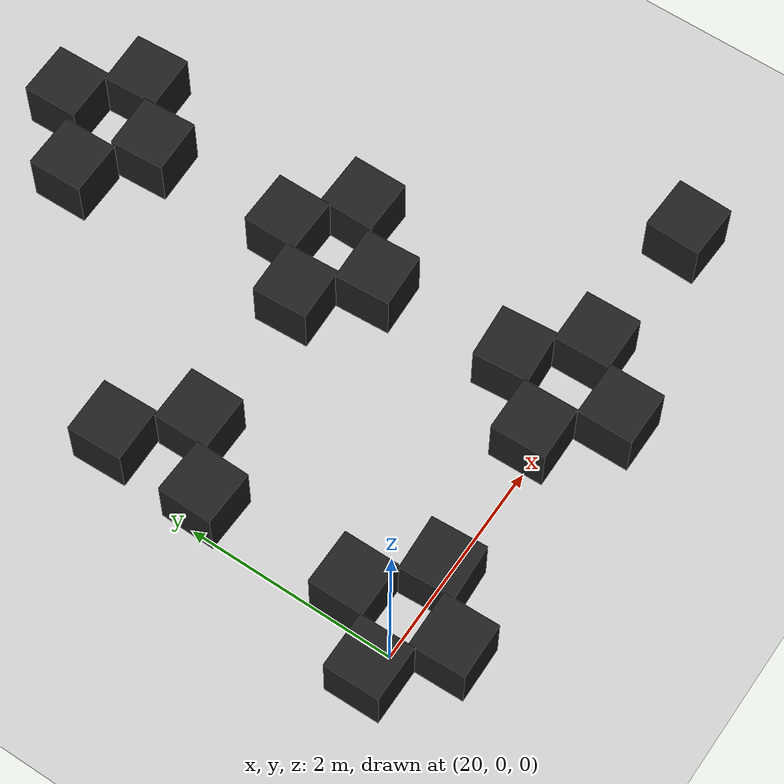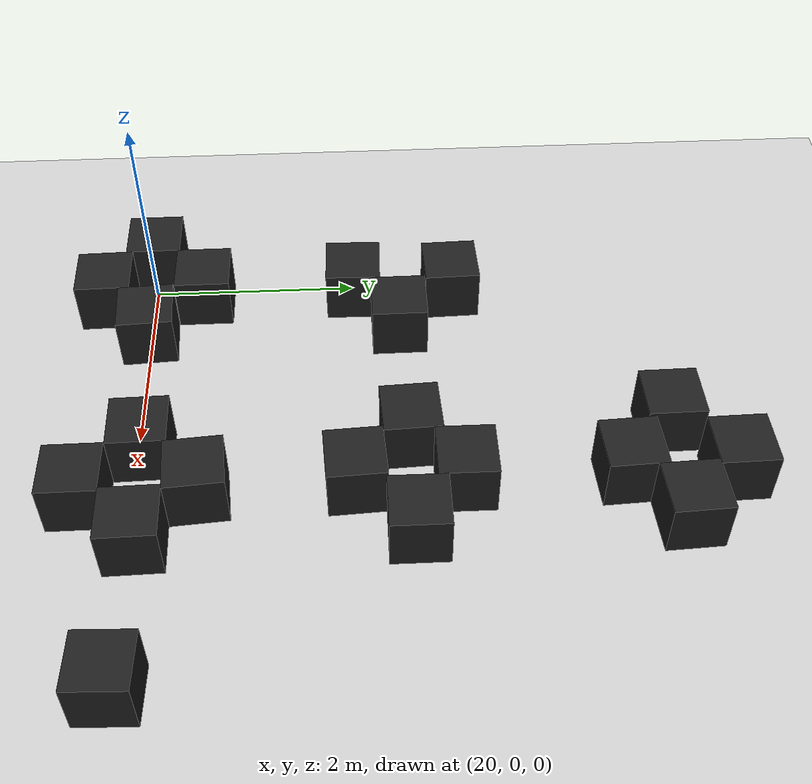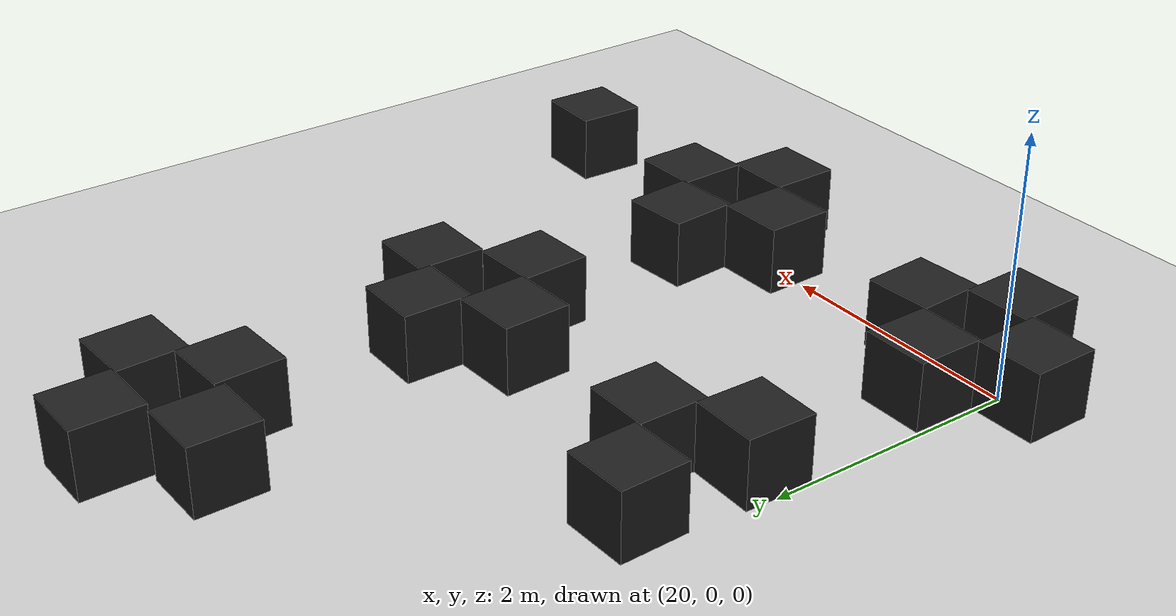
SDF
<sdf version="1.6">
 <world name="default">
  <model name="ground_plane">
   <static>1</static>
   <link name="link">
    <collision name="collision">
     <geometry><plane><normal>0 0 1</normal><size>100 100</size></plane></geometry>
     <surface>
      <contact><collide_bitmask>65535</collide_bitmask></contact>
      <friction><ode><mu>100</mu><mu2>50</mu2></ode></friction>
     </surface>
    </collision>
    <visual name="visual">
     <cast_shadows>0</cast_shadows>
     <geometry><plane><normal>0 0 1</normal><size>100 100</size></plane></geometry>
     <material>
      <script><uri>file://media/materials/scripts/gazebo.material</uri><name>Gazebo/Grey</name></script>
     </material>
    </visual>
   </link>
  </model>
  <model name="unit_box_0_clone_13">
   <link name="link">
    <inertial>
     <mass>1</mass>
     <inertia>
      <ixx>0.166667</ixx>
      <ixy>0</ixy>
      <ixz>0</ixz>
      <iyy>0.166667</iyy>
      <iyz>0</iyz>
      <izz>0.166667</izz>
     </inertia>
    </inertial>
    <visual name="visual">
     <geometry><box><size>0.530101 0.530101 0.530101</size></box></geometry>
     <material>
      <script><name>Gazebo/FlatBlack</name><uri>file://media/materials/scripts/gazebo.material</uri></script>
      <shader type="pixel"><normal_map>__default__</normal_map></shader>
      <ambient>0.1 0.1 0.1 1</ambient>
      <diffuse>0.1 0.1 0.1 1</diffuse>
      <specular>0.01 0.01 0.01 1</specular>
      <emissive>0 0 0 1</emissive>
     </material>
    </visual>
    <collision name="collision">
     <geometry><box><size>0.530101 0.530101 0.530101</size></box></geometry>
     <surface>
      <friction>
       <ode><mu>1</mu><mu2>1</mu2><fdir1>0 0 0</fdir1><slip1>0</slip1><slip2>0</slip2></ode>
       <torsional>
        <coefficient>1</coefficient>
        <patch_radius>0</patch_radius>
        <surface_radius>0</surface_radius>
        <use_patch_radius>1</use_patch_radius>
        <ode><slip>0</slip></ode>
       </torsional>
      </friction>
      <bounce><restitution_coefficient>0</restitution_coefficient><threshold>1e+06</threshold></bounce>
      <contact>
       <collide_without_contact>0</collide_without_contact>
       <collide_without_contact_bitmask>1</collide_without_contact_bitmask>
       <collide_bitmask>1</collide_bitmask>
       <ode>
        <soft_cfm>0</soft_cfm>
        <soft_erp>0.2</soft_erp>
        <kp>1e+13</kp>
        <kd>1</kd>
        <max_vel>0.01</max_vel>
        <min_depth>0</min_depth>
       </ode>
       <bullet>
        <split_impulse>1</split_impulse>
        <split_impulse_penetration_threshold>-0.01</split_impulse_penetration_threshold>
        <soft_cfm>0</soft_cfm>
        <soft_erp>0.2</soft_erp>
        <kp>1e+13</kp>
        <kd>1</kd>
       </bullet>
      </contact>
     </surface>
    </collision>
   </link>
   <static>0</static>
   <pose>22.1517 4.84185 0.314113 0 -0 0.013982</pose>
  </model>
  <model name="unit_box_0_clone_22_clone_14">
   <link name="link">
    <inertial>
     <mass>1</mass>
     <inertia>
      <ixx>0.166667</ixx>
      <ixy>0</ixy>
      <ixz>0</ixz>
      <iyy>0.166667</iyy>
      <iyz>0</iyz>
      <izz>0.166667</izz>
     </inertia>
    </inertial>
    <visual name="visual">
     <geometry><box><size>0.530101 0.530101 0.530101</size></box></geometry>
     <material>
      <script><name>Gazebo/FlatBlack</name><uri>file://media/materials/scripts/gazebo.material</uri></script>
      <shader type="pixel"><normal_map>__default__</normal_map></shader>
      <ambient>0.1 0.1 0.1 1</ambient>
      <diffuse>0.1 0.1 0.1 1</diffuse>
      <specular>0.01 0.01 0.01 1</specular>
      <emissive>0 0 0 1</emissive>
     </material>
    </visual>
    <collision name="collision">
     <geometry><box><size>0.530101 0.530101 0.530101</size></box></geometry>
     <surface>
      <friction>
       <ode><mu>1</mu><mu2>1</mu2><fdir1>0 0 0</fdir1><slip1>0</slip1><slip2>0</slip2></ode>
       <torsional>
        <coefficient>1</coefficient>
        <patch_radius>0</patch_radius>
        <surface_radius>0</surface_radius>
        <use_patch_radius>1</use_patch_radius>
        <ode><slip>0</slip></ode>
       </torsional>
      </friction>
      <bounce><restitution_coefficient>0</restitution_coefficient><threshold>1e+06</threshold></bounce>
      <contact>
       <collide_without_contact>0</collide_without_contact>
       <collide_without_contact_bitmask>1</collide_without_contact_bitmask>
       <collide_bitmask>1</collide_bitmask>
       <ode>
        <soft_cfm>0</soft_cfm>
        <soft_erp>0.2</soft_erp>
        <kp>1e+13</kp>
        <kd>1</kd>
        <max_vel>0.01</max_vel>
        <min_depth>0</min_depth>
       </ode>
       <bullet>
        <split_impulse>1</split_impulse>
        <split_impulse_penetration_threshold>-0.01</split_impulse_penetration_threshold>
        <soft_cfm>0</soft_cfm>
        <soft_erp>0.2</soft_erp>
        <kp>1e+13</kp>
        <kd>1</kd>
       </bullet>
      </contact>
     </surface>
    </collision>
   </link>
   <static>0</static>
   <pose>22.7398 5.34918 0.314111 5e-06 -1.1e-05 0.020813</pose>
  </model>
  <model name="unit_box_0_clone_22_clone_23">
   <link name="link">
    <inertial>
     <mass>1</mass>
     <inertia>
      <ixx>0.166667</ixx>
      <ixy>0</ixy>
      <ixz>0</ixz>
      <iyy>0.166667</iyy>
      <iyz>0</iyz>
      <izz>0.166667</izz>
     </inertia>
    </inertial>
    <visual name="visual">
     <geometry><box><size>0.530101 0.530101 0.530101</size></box></geometry>
     <material>
      <script><name>Gazebo/FlatBlack</name><uri>file://media/materials/scripts/gazebo.material</uri></script>
      <shader type="pixel"><normal_map>__default__</normal_map></shader>
      <ambient>0.1 0.1 0.1 1</ambient>
      <diffuse>0.1 0.1 0.1 1</diffuse>
      <specular>0.01 0.01 0.01 1</specular>
      <emissive>0 0 0 1</emissive>
     </material>
    </visual>
    <collision name="collision">
     <geometry><box><size>0.530101 0.530101 0.530101</size></box></geometry>
     <surface>
      <friction>
       <ode><mu>1</mu><mu2>1</mu2><fdir1>0 0 0</fdir1><slip1>0</slip1><slip2>0</slip2></ode>
       <torsional>
        <coefficient>1</coefficient>
        <patch_radius>0</patch_radius>
        <surface_radius>0</surface_radius>
        <use_patch_radius>1</use_patch_radius>
        <ode><slip>0</slip></ode>
       </torsional>
      </friction>
      <bounce><restitution_coefficient>0</restitution_coefficient><threshold>1e+06</threshold></bounce>
      <contact>
       <collide_without_contact>0</collide_without_contact>
       <collide_without_contact_bitmask>1</collide_without_contact_bitmask>
       <collide_bitmask>1</collide_bitmask>
       <ode>
        <soft_cfm>0</soft_cfm>
        <soft_erp>0.2</soft_erp>
        <kp>1e+13</kp>
        <kd>1</kd>
        <max_vel>0.01</max_vel>
        <min_depth>0</min_depth>
       </ode>
       <bullet>
        <split_impulse>1</split_impulse>
        <split_impulse_penetration_threshold>-0.01</split_impulse_penetration_threshold>
        <soft_cfm>0</soft_cfm>
        <soft_erp>0.2</soft_erp>
        <kp>1e+13</kp>
        <kd>1</kd>
       </bullet>
      </contact>
     </surface>
    </collision>
   </link>
   <static>0</static>
   <pose>22.7259 4.38549 0.314113 0 -0 0.047968</pose>
  </model>
  <model name="unit_box_0_clone_22_clone_24">
   <link name="link">
    <inertial>
     <mass>1</mass>
     <inertia>
      <ixx>0.166667</ixx>
      <ixy>0</ixy>
      <ixz>0</ixz>
      <iyy>0.166667</iyy>
      <iyz>0</iyz>
      <izz>0.166667</izz>
     </inertia>
    </inertial>
    <visual name="visual">
     <geometry><box><size>0.530101 0.530101 0.530101</size></box></geometry>
     <material>
      <script><name>Gazebo/FlatBlack</name><uri>file://media/materials/scripts/gazebo.material</uri></script>
      <shader type="pixel"><normal_map>__default__</normal_map></shader>
      <ambient>0.1 0.1 0.1 1</ambient>
      <diffuse>0.1 0.1 0.1 1</diffuse>
      <specular>0.01 0.01 0.01 1</specular>
      <emissive>0 0 0 1</emissive>
     </material>
    </visual>
    <collision name="collision">
     <geometry><box><size>0.530101 0.530101 0.530101</size></box></geometry>
     <surface>
      <friction>
       <ode><mu>1</mu><mu2>1</mu2><fdir1>0 0 0</fdir1><slip1>0</slip1><slip2>0</slip2></ode>
       <torsional>
        <coefficient>1</coefficient>
        <patch_radius>0</patch_radius>
        <surface_radius>0</surface_radius>
        <use_patch_radius>1</use_patch_radius>
        <ode><slip>0</slip></ode>
       </torsional>
      </friction>
      <bounce><restitution_coefficient>0</restitution_coefficient><threshold>1e+06</threshold></bounce>
      <contact>
       <collide_without_contact>0</collide_without_contact>
       <collide_without_contact_bitmask>1</collide_without_contact_bitmask>
       <collide_bitmask>1</collide_bitmask>
       <ode>
        <soft_cfm>0</soft_cfm>
        <soft_erp>0.2</soft_erp>
        <kp>1e+13</kp>
        <kd>1</kd>
        <max_vel>0.01</max_vel>
        <min_depth>0</min_depth>
       </ode>
       <bullet>
        <split_impulse>1</split_impulse>
        <split_impulse_penetration_threshold>-0.01</split_impulse_penetration_threshold>
        <soft_cfm>0</soft_cfm>
        <soft_erp>0.2</soft_erp>
        <kp>1e+13</kp>
        <kd>1</kd>
       </bullet>
      </contact>
     </surface>
    </collision>
   </link>
   <static>0</static>
   <pose>23.2352 4.8352 0.314113 0 -0 0.048299</pose>
  </model>
  <model name="unit_box_0_clone_10">
   <link name="link">
    <inertial>
     <mass>1</mass>
     <inertia>
      <ixx>0.166667</ixx>
      <ixy>0</ixy>
      <ixz>0</ixz>
      <iyy>0.166667</iyy>
      <iyz>0</iyz>
      <izz>0.166667</izz>
     </inertia>
    </inertial>
    <visual name="visual">
     <geometry><box><size>0.530101 0.530101 0.530101</size></box></geometry>
     <material>
      <script><name>Gazebo/FlatBlack</name><uri>file://media/materials/scripts/gazebo.material</uri></script>
      <shader type="pixel"><normal_map>__default__</normal_map></shader>
      <ambient>0.1 0.1 0.1 1</ambient>
      <diffuse>0.1 0.1 0.1 1</diffuse>
      <specular>0.01 0.01 0.01 1</specular>
      <emissive>0 0 0 1</emissive>
     </material>
    </visual>
    <collision name="collision">
     <geometry><box><size>0.530101 0.530101 0.530101</size></box></geometry>
     <surface>
      <friction>
       <ode><mu>1</mu><mu2>1</mu2><fdir1>0 0 0</fdir1><slip1>0</slip1><slip2>0</slip2></ode>
       <torsional>
        <coefficient>1</coefficient>
        <patch_radius>0</patch_radius>
        <surface_radius>0</surface_radius>
        <use_patch_radius>1</use_patch_radius>
        <ode><slip>0</slip></ode>
       </torsional>
      </friction>
      <bounce><restitution_coefficient>0</restitution_coefficient><threshold>1e+06</threshold></bounce>
      <contact>
       <collide_without_contact>0</collide_without_contact>
       <collide_without_contact_bitmask>1</collide_without_contact_bitmask>
       <collide_bitmask>1</collide_bitmask>
       <ode>
        <soft_cfm>0</soft_cfm>
        <soft_erp>0.2</soft_erp>
        <kp>1e+13</kp>
        <kd>1</kd>
        <max_vel>0.01</max_vel>
        <min_depth>0</min_depth>
       </ode>
       <bullet>
        <split_impulse>1</split_impulse>
        <split_impulse_penetration_threshold>-0.01</split_impulse_penetration_threshold>
        <soft_cfm>0</soft_cfm>
        <soft_erp>0.2</soft_erp>
        <kp>1e+13</kp>
        <kd>1</kd>
       </bullet>
      </contact>
     </surface>
    </collision>
   </link>
   <static>0</static>
   <pose>20.223 2.01564 0.314108 -7e-06 1.1e-05 -0.02247</pose>
  </model>
  <model name="unit_box_0_clone_28">
   <link name="link">
    <inertial>
     <mass>1</mass>
     <inertia>
      <ixx>0.166667</ixx>
      <ixy>0</ixy>
      <ixz>0</ixz>
      <iyy>0.166667</iyy>
      <iyz>0</iyz>
      <izz>0.166667</izz>
     </inertia>
    </inertial>
    <visual name="visual">
     <geometry><box><size>0.530101 0.530101 0.530101</size></box></geometry>
     <material>
      <script><name>Gazebo/FlatBlack</name><uri>file://media/materials/scripts/gazebo.material</uri></script>
      <shader type="pixel"><normal_map>__default__</normal_map></shader>
      <ambient>0.1 0.1 0.1 1</ambient>
      <diffuse>0.1 0.1 0.1 1</diffuse>
      <specular>0.01 0.01 0.01 1</specular>
      <emissive>0 0 0 1</emissive>
     </material>
    </visual>
    <collision name="collision">
     <geometry><box><size>0.530101 0.530101 0.530101</size></box></geometry>
     <surface>
      <friction>
       <ode><mu>1</mu><mu2>1</mu2><fdir1>0 0 0</fdir1><slip1>0</slip1><slip2>0</slip2></ode>
       <torsional>
        <coefficient>1</coefficient>
        <patch_radius>0</patch_radius>
        <surface_radius>0</surface_radius>
        <use_patch_radius>1</use_patch_radius>
        <ode><slip>0</slip></ode>
       </torsional>
      </friction>
      <bounce><restitution_coefficient>0</restitution_coefficient><threshold>1e+06</threshold></bounce>
      <contact>
       <collide_without_contact>0</collide_without_contact>
       <collide_without_contact_bitmask>1</collide_without_contact_bitmask>
       <collide_bitmask>1</collide_bitmask>
       <ode>
        <soft_cfm>0</soft_cfm>
        <soft_erp>0.2</soft_erp>
        <kp>1e+13</kp>
        <kd>1</kd>
        <max_vel>0.01</max_vel>
        <min_depth>0</min_depth>
       </ode>
       <bullet>
        <split_impulse>1</split_impulse>
        <split_impulse_penetration_threshold>-0.01</split_impulse_penetration_threshold>
        <soft_cfm>0</soft_cfm>
        <soft_erp>0.2</soft_erp>
        <kp>1e+13</kp>
        <kd>1</kd>
       </bullet>
      </contact>
     </surface>
    </collision>
   </link>
   <static>0</static>
   <pose>20.2602 2.98412 0.314111 1.1e-05 -6e-06 0.028537</pose>
  </model>
  <model name="unit_box_0_clone_22_clone_15_clone_6">
   <link name="link">
    <inertial>
     <mass>1</mass>
     <inertia>
      <ixx>0.166667</ixx>
      <ixy>0</ixy>
      <ixz>0</ixz>
      <iyy>0.166667</iyy>
      <iyz>0</iyz>
      <izz>0.166667</izz>
     </inertia>
    </inertial>
    <visual name="visual">
     <geometry><box><size>0.530101 0.530101 0.530101</size></box></geometry>
     <material>
      <script><name>Gazebo/FlatBlack</name><uri>file://media/materials/scripts/gazebo.material</uri></script>
      <shader type="pixel"><normal_map>__default__</normal_map></shader>
      <ambient>0.1 0.1 0.1 1</ambient>
      <diffuse>0.1 0.1 0.1 1</diffuse>
      <specular>0.01 0.01 0.01 1</specular>
      <emissive>0 0 0 1</emissive>
     </material>
    </visual>
    <collision name="collision">
     <geometry><box><size>0.530101 0.530101 0.530101</size></box></geometry>
     <surface>
      <friction>
       <ode><mu>1</mu><mu2>1</mu2><fdir1>0 0 0</fdir1><slip1>0</slip1><slip2>0</slip2></ode>
       <torsional>
        <coefficient>1</coefficient>
        <patch_radius>0</patch_radius>
        <surface_radius>0</surface_radius>
        <use_patch_radius>1</use_patch_radius>
        <ode><slip>0</slip></ode>
       </torsional>
      </friction>
      <bounce><restitution_coefficient>0</restitution_coefficient><threshold>1e+06</threshold></bounce>
      <contact>
       <collide_without_contact>0</collide_without_contact>
       <collide_without_contact_bitmask>1</collide_without_contact_bitmask>
       <collide_bitmask>1</collide_bitmask>
       <ode>
        <soft_cfm>0</soft_cfm>
        <soft_erp>0.2</soft_erp>
        <kp>1e+13</kp>
        <kd>1</kd>
        <max_vel>0.01</max_vel>
        <min_depth>0</min_depth>
       </ode>
       <bullet>
        <split_impulse>1</split_impulse>
        <split_impulse_penetration_threshold>-0.01</split_impulse_penetration_threshold>
        <soft_cfm>0</soft_cfm>
        <soft_erp>0.2</soft_erp>
        <kp>1e+13</kp>
        <kd>1</kd>
       </bullet>
      </contact>
     </surface>
    </collision>
   </link>
   <static>0</static>
   <pose>20.7581 2.4489 0.314108 9e-06 8e-06 0.004997</pose>
  </model>
  <model name="unit_box_0_clone_22_clone_15_clone_7">
   <link name="link">
    <inertial>
     <mass>1</mass>
     <inertia>
      <ixx>0.166667</ixx>
      <ixy>0</ixy>
      <ixz>0</ixz>
      <iyy>0.166667</iyy>
      <iyz>0</iyz>
      <izz>0.166667</izz>
     </inertia>
    </inertial>
    <visual name="visual">
     <geometry><box><size>0.530101 0.530101 0.530101</size></box></geometry>
     <material>
      <script><name>Gazebo/FlatBlack</name><uri>file://media/materials/scripts/gazebo.material</uri></script>
      <shader type="pixel"><normal_map>__default__</normal_map></shader>
      <ambient>0.1 0.1 0.1 1</ambient>
      <diffuse>0.1 0.1 0.1 1</diffuse>
      <specular>0.01 0.01 0.01 1</specular>
      <emissive>0 0 0 1</emissive>
     </material>
    </visual>
    <collision name="collision">
     <geometry><box><size>0.530101 0.530101 0.530101</size></box></geometry>
     <surface>
      <friction>
       <ode><mu>1</mu><mu2>1</mu2><fdir1>0 0 0</fdir1><slip1>0</slip1><slip2>0</slip2></ode>
       <torsional>
        <coefficient>1</coefficient>
        <patch_radius>0</patch_radius>
        <surface_radius>0</surface_radius>
        <use_patch_radius>1</use_patch_radius>
        <ode><slip>0</slip></ode>
       </torsional>
      </friction>
      <bounce><restitution_coefficient>0</restitution_coefficient><threshold>1e+06</threshold></bounce>
      <contact>
       <collide_without_contact>0</collide_without_contact>
       <collide_without_contact_bitmask>1</collide_without_contact_bitmask>
       <collide_bitmask>1</collide_bitmask>
       <ode>
        <soft_cfm>0</soft_cfm>
        <soft_erp>0.2</soft_erp>
        <kp>1e+13</kp>
        <kd>1</kd>
        <max_vel>0.01</max_vel>
        <min_depth>0</min_depth>
       </ode>
       <bullet>
        <split_impulse>1</split_impulse>
        <split_impulse_penetration_threshold>-0.01</split_impulse_penetration_threshold>
        <soft_cfm>0</soft_cfm>
        <soft_erp>0.2</soft_erp>
        <kp>1e+13</kp>
        <kd>1</kd>
       </bullet>
      </contact>
     </surface>
    </collision>
   </link>
   <static>0</static>
   <pose>20.7749 0.007366 0.314108 8e-06 8e-06 0.05483</pose>
  </model>
  <model name="unit_box_0_clone_22_clone_15_clone_8">
   <link name="link">
    <inertial>
     <mass>1</mass>
     <inertia>
      <ixx>0.166667</ixx>
      <ixy>0</ixy>
      <ixz>0</ixz>
      <iyy>0.166667</iyy>
      <iyz>0</iyz>
      <izz>0.166667</izz>
     </inertia>
    </inertial>
    <visual name="visual">
     <geometry><box><size>0.530101 0.530101 0.530101</size></box></geometry>
     <material>
      <script><name>Gazebo/FlatBlack</name><uri>file://media/materials/scripts/gazebo.material</uri></script>
      <shader type="pixel"><normal_map>__default__</normal_map></shader>
      <ambient>0.1 0.1 0.1 1</ambient>
      <diffuse>0.1 0.1 0.1 1</diffuse>
      <specular>0.01 0.01 0.01 1</specular>
      <emissive>0 0 0 1</emissive>
     </material>
    </visual>
    <collision name="collision">
     <geometry><box><size>0.530101 0.530101 0.530101</size></box></geometry>
     <surface>
      <friction>
       <ode><mu>1</mu><mu2>1</mu2><fdir1>0 0 0</fdir1><slip1>0</slip1><slip2>0</slip2></ode>
       <torsional>
        <coefficient>1</coefficient>
        <patch_radius>0</patch_radius>
        <surface_radius>0</surface_radius>
        <use_patch_radius>1</use_patch_radius>
        <ode><slip>0</slip></ode>
       </torsional>
      </friction>
      <bounce><restitution_coefficient>0</restitution_coefficient><threshold>1e+06</threshold></bounce>
      <contact>
       <collide_without_contact>0</collide_without_contact>
       <collide_without_contact_bitmask>1</collide_without_contact_bitmask>
       <collide_bitmask>1</collide_bitmask>
       <ode>
        <soft_cfm>0</soft_cfm>
        <soft_erp>0.2</soft_erp>
        <kp>1e+13</kp>
        <kd>1</kd>
        <max_vel>0.01</max_vel>
        <min_depth>0</min_depth>
       </ode>
       <bullet>
        <split_impulse>1</split_impulse>
        <split_impulse_penetration_threshold>-0.01</split_impulse_penetration_threshold>
        <soft_cfm>0</soft_cfm>
        <soft_erp>0.2</soft_erp>
        <kp>1e+13</kp>
        <kd>1</kd>
       </bullet>
      </contact>
     </surface>
    </collision>
   </link>
   <static>0</static>
   <pose>20.2511 0.531607 0.314113 0 -0 0.001615</pose>
  </model>
  <model name="unit_box_0_clone_22_clone_15_clone_9">
   <link name="link">
    <inertial>
     <mass>1</mass>
     <inertia>
      <ixx>0.166667</ixx>
      <ixy>0</ixy>
      <ixz>0</ixz>
      <iyy>0.166667</iyy>
      <iyz>0</iyz>
      <izz>0.166667</izz>
     </inertia>
    </inertial>
    <visual name="visual">
     <geometry><box><size>0.530101 0.530101 0.530101</size></box></geometry>
     <material>
      <script><name>Gazebo/FlatBlack</name><uri>file://media/materials/scripts/gazebo.material</uri></script>
      <shader type="pixel"><normal_map>__default__</normal_map></shader>
      <ambient>0.1 0.1 0.1 1</ambient>
      <diffuse>0.1 0.1 0.1 1</diffuse>
      <specular>0.01 0.01 0.01 1</specular>
      <emissive>0 0 0 1</emissive>
     </material>
    </visual>
    <collision name="collision">
     <geometry><box><size>0.530101 0.530101 0.530101</size></box></geometry>
     <surface>
      <friction>
       <ode><mu>1</mu><mu2>1</mu2><fdir1>0 0 0</fdir1><slip1>0</slip1><slip2>0</slip2></ode>
       <torsional>
        <coefficient>1</coefficient>
        <patch_radius>0</patch_radius>
        <surface_radius>0</surface_radius>
        <use_patch_radius>1</use_patch_radius>
        <ode><slip>0</slip></ode>
       </torsional>
      </friction>
      <bounce><restitution_coefficient>0</restitution_coefficient><threshold>1e+06</threshold></bounce>
      <contact>
       <collide_without_contact>0</collide_without_contact>
       <collide_without_contact_bitmask>1</collide_without_contact_bitmask>
       <collide_bitmask>1</collide_bitmask>
       <ode>
        <soft_cfm>0</soft_cfm>
        <soft_erp>0.2</soft_erp>
        <kp>1e+13</kp>
        <kd>1</kd>
        <max_vel>0.01</max_vel>
        <min_depth>0</min_depth>
       </ode>
       <bullet>
        <split_impulse>1</split_impulse>
        <split_impulse_penetration_threshold>-0.01</split_impulse_penetration_threshold>
        <soft_cfm>0</soft_cfm>
        <soft_erp>0.2</soft_erp>
        <kp>1e+13</kp>
        <kd>1</kd>
       </bullet>
      </contact>
     </surface>
    </collision>
   </link>
   <static>0</static>
   <pose>19.7223 0.018199 0.314113 0 -0 0.008814</pose>
  </model>
  <model name="unit_box_0_clone_22_clone_15_clone_10">
   <link name="link">
    <inertial>
     <mass>1</mass>
     <inertia>
      <ixx>0.166667</ixx>
      <ixy>0</ixy>
      <ixz>0</ixz>
      <iyy>0.166667</iyy>
      <iyz>0</iyz>
      <izz>0.166667</izz>
     </inertia>
    </inertial>
    <visual name="visual">
     <geometry><box><size>0.530101 0.530101 0.530101</size></box></geometry>
     <material>
      <script><name>Gazebo/FlatBlack</name><uri>file://media/materials/scripts/gazebo.material</uri></script>
      <shader type="pixel"><normal_map>__default__</normal_map></shader>
      <ambient>0.1 0.1 0.1 1</ambient>
      <diffuse>0.1 0.1 0.1 1</diffuse>
      <specular>0.01 0.01 0.01 1</specular>
      <emissive>0 0 0 1</emissive>
     </material>
    </visual>
    <collision name="collision">
     <geometry><box><size>0.530101 0.530101 0.530101</size></box></geometry>
     <surface>
      <friction>
       <ode><mu>1</mu><mu2>1</mu2><fdir1>0 0 0</fdir1><slip1>0</slip1><slip2>0</slip2></ode>
       <torsional>
        <coefficient>1</coefficient>
        <patch_radius>0</patch_radius>
        <surface_radius>0</surface_radius>
        <use_patch_radius>1</use_patch_radius>
        <ode><slip>0</slip></ode>
       </torsional>
      </friction>
      <bounce><restitution_coefficient>0</restitution_coefficient><threshold>1e+06</threshold></bounce>
      <contact>
       <collide_without_contact>0</collide_without_contact>
       <collide_without_contact_bitmask>1</collide_without_contact_bitmask>
       <collide_bitmask>1</collide_bitmask>
       <ode>
        <soft_cfm>0</soft_cfm>
        <soft_erp>0.2</soft_erp>
        <kp>1e+13</kp>
        <kd>1</kd>
        <max_vel>0.01</max_vel>
        <min_depth>0</min_depth>
       </ode>
       <bullet>
        <split_impulse>1</split_impulse>
        <split_impulse_penetration_threshold>-0.01</split_impulse_penetration_threshold>
        <soft_cfm>0</soft_cfm>
        <soft_erp>0.2</soft_erp>
        <kp>1e+13</kp>
        <kd>1</kd>
       </bullet>
      </contact>
     </surface>
    </collision>
   </link>
   <static>0</static>
   <pose>20.2604 -0.440274 0.314113 2e-06 -0 0.02374</pose>
  </model>
  <model name="unit_box_0_clone_22_clone_15_clone_11">
   <link name="link">
    <inertial>
     <mass>1</mass>
     <inertia>
      <ixx>0.166667</ixx>
      <ixy>0</ixy>
      <ixz>0</ixz>
      <iyy>0.166667</iyy>
      <iyz>0</iyz>
      <izz>0.166667</izz>
     </inertia>
    </inertial>
    <visual name="visual">
     <geometry><box><size>0.530101 0.530101 0.530101</size></box></geometry>
     <material>
      <script><name>Gazebo/FlatBlack</name><uri>file://media/materials/scripts/gazebo.material</uri></script>
      <shader type="pixel"><normal_map>__default__</normal_map></shader>
      <ambient>0.1 0.1 0.1 1</ambient>
      <diffuse>0.1 0.1 0.1 1</diffuse>
      <specular>0.01 0.01 0.01 1</specular>
      <emissive>0 0 0 1</emissive>
     </material>
    </visual>
    <collision name="collision">
     <geometry><box><size>0.530101 0.530101 0.530101</size></box></geometry>
     <surface>
      <friction>
       <ode><mu>1</mu><mu2>1</mu2><fdir1>0 0 0</fdir1><slip1>0</slip1><slip2>0</slip2></ode>
       <torsional>
        <coefficient>1</coefficient>
        <patch_radius>0</patch_radius>
        <surface_radius>0</surface_radius>
        <use_patch_radius>1</use_patch_radius>
        <ode><slip>0</slip></ode>
       </torsional>
      </friction>
      <bounce><restitution_coefficient>0</restitution_coefficient><threshold>1e+06</threshold></bounce>
      <contact>
       <collide_without_contact>0</collide_without_contact>
       <collide_without_contact_bitmask>1</collide_without_contact_bitmask>
       <collide_bitmask>1</collide_bitmask>
       <ode>
        <soft_cfm>0</soft_cfm>
        <soft_erp>0.2</soft_erp>
        <kp>1e+13</kp>
        <kd>1</kd>
        <max_vel>0.01</max_vel>
        <min_depth>0</min_depth>
       </ode>
       <bullet>
        <split_impulse>1</split_impulse>
        <split_impulse_penetration_threshold>-0.01</split_impulse_penetration_threshold>
        <soft_cfm>0</soft_cfm>
        <soft_erp>0.2</soft_erp>
        <kp>1e+13</kp>
        <kd>1</kd>
       </bullet>
      </contact>
     </surface>
    </collision>
   </link>
   <static>0</static>
   <pose>23.2679 2.5019 0.314108 -8e-06 -8e-06 -0.00347</pose>
  </model>
  <model name="unit_box_0_clone_22_clone_15_clone_12">
   <link name="link">
    <inertial>
     <mass>1</mass>
     <inertia>
      <ixx>0.166667</ixx>
      <ixy>0</ixy>
      <ixz>0</ixz>
      <iyy>0.166667</iyy>
      <iyz>0</iyz>
      <izz>0.166667</izz>
     </inertia>
    </inertial>
    <visual name="visual">
     <geometry><box><size>0.530101 0.530101 0.530101</size></box></geometry>
     <material>
      <script><name>Gazebo/FlatBlack</name><uri>file://media/materials/scripts/gazebo.material</uri></script>
      <shader type="pixel"><normal_map>__default__</normal_map></shader>
      <ambient>0.1 0.1 0.1 1</ambient>
      <diffuse>0.1 0.1 0.1 1</diffuse>
      <specular>0.01 0.01 0.01 1</specular>
      <emissive>0 0 0 1</emissive>
     </material>
    </visual>
    <collision name="collision">
     <geometry><box><size>0.530101 0.530101 0.530101</size></box></geometry>
     <surface>
      <friction>
       <ode><mu>1</mu><mu2>1</mu2><fdir1>0 0 0</fdir1><slip1>0</slip1><slip2>0</slip2></ode>
       <torsional>
        <coefficient>1</coefficient>
        <patch_radius>0</patch_radius>
        <surface_radius>0</surface_radius>
        <use_patch_radius>1</use_patch_radius>
        <ode><slip>0</slip></ode>
       </torsional>
      </friction>
      <bounce><restitution_coefficient>0</restitution_coefficient><threshold>1e+06</threshold></bounce>
      <contact>
       <collide_without_contact>0</collide_without_contact>
       <collide_without_contact_bitmask>1</collide_without_contact_bitmask>
       <collide_bitmask>1</collide_bitmask>
       <ode>
        <soft_cfm>0</soft_cfm>
        <soft_erp>0.2</soft_erp>
        <kp>1e+13</kp>
        <kd>1</kd>
        <max_vel>0.01</max_vel>
        <min_depth>0</min_depth>
       </ode>
       <bullet>
        <split_impulse>1</split_impulse>
        <split_impulse_penetration_threshold>-0.01</split_impulse_penetration_threshold>
        <soft_cfm>0</soft_cfm>
        <soft_erp>0.2</soft_erp>
        <kp>1e+13</kp>
        <kd>1</kd>
       </bullet>
      </contact>
     </surface>
    </collision>
   </link>
   <static>0</static>
   <pose>22.7393 2.94287 0.314113 0 -0 -0.003889</pose>
  </model>
  <model name="unit_box_0_clone_22_clone_15_clone_13">
   <link name="link">
    <inertial>
     <mass>1</mass>
     <inertia>
      <ixx>0.166667</ixx>
      <ixy>0</ixy>
      <ixz>0</ixz>
      <iyy>0.166667</iyy>
      <iyz>0</iyz>
      <izz>0.166667</izz>
     </inertia>
    </inertial>
    <visual name="visual">
     <geometry><box><size>0.530101 0.530101 0.530101</size></box></geometry>
     <material>
      <script><name>Gazebo/FlatBlack</name><uri>file://media/materials/scripts/gazebo.material</uri></script>
      <shader type="pixel"><normal_map>__default__</normal_map></shader>
      <ambient>0.1 0.1 0.1 1</ambient>
      <diffuse>0.1 0.1 0.1 1</diffuse>
      <specular>0.01 0.01 0.01 1</specular>
      <emissive>0 0 0 1</emissive>
     </material>
    </visual>
    <collision name="collision">
     <geometry><box><size>0.530101 0.530101 0.530101</size></box></geometry>
     <surface>
      <friction>
       <ode><mu>1</mu><mu2>1</mu2><fdir1>0 0 0</fdir1><slip1>0</slip1><slip2>0</slip2></ode>
       <torsional>
        <coefficient>1</coefficient>
        <patch_radius>0</patch_radius>
        <surface_radius>0</surface_radius>
        <use_patch_radius>1</use_patch_radius>
        <ode><slip>0</slip></ode>
       </torsional>
      </friction>
      <bounce><restitution_coefficient>0</restitution_coefficient><threshold>1e+06</threshold></bounce>
      <contact>
       <collide_without_contact>0</collide_without_contact>
       <collide_without_contact_bitmask>1</collide_without_contact_bitmask>
       <collide_bitmask>1</collide_bitmask>
       <ode>
        <soft_cfm>0</soft_cfm>
        <soft_erp>0.2</soft_erp>
        <kp>1e+13</kp>
        <kd>1</kd>
        <max_vel>0.01</max_vel>
        <min_depth>0</min_depth>
       </ode>
       <bullet>
        <split_impulse>1</split_impulse>
        <split_impulse_penetration_threshold>-0.01</split_impulse_penetration_threshold>
        <soft_cfm>0</soft_cfm>
        <soft_erp>0.2</soft_erp>
        <kp>1e+13</kp>
        <kd>1</kd>
       </bullet>
      </contact>
     </surface>
    </collision>
   </link>
   <static>0</static>
   <pose>22.7205 1.97813 0.314113 0 -0 0.052941</pose>
  </model>
  <model name="unit_box_0_clone_22_clone_15_clone_14">
   <link name="link">
    <inertial>
     <mass>1</mass>
     <inertia>
      <ixx>0.166667</ixx>
      <ixy>0</ixy>
      <ixz>0</ixz>
      <iyy>0.166667</iyy>
      <iyz>0</iyz>
      <izz>0.166667</izz>
     </inertia>
    </inertial>
    <visual name="visual">
     <geometry><box><size>0.530101 0.530101 0.530101</size></box></geometry>
     <material>
      <script><name>Gazebo/FlatBlack</name><uri>file://media/materials/scripts/gazebo.material</uri></script>
      <shader type="pixel"><normal_map>__default__</normal_map></shader>
      <ambient>0.1 0.1 0.1 1</ambient>
      <diffuse>0.1 0.1 0.1 1</diffuse>
      <specular>0.01 0.01 0.01 1</specular>
      <emissive>0 0 0 1</emissive>
     </material>
    </visual>
    <collision name="collision">
     <geometry><box><size>0.530101 0.530101 0.530101</size></box></geometry>
     <surface>
      <friction>
       <ode><mu>1</mu><mu2>1</mu2><fdir1>0 0 0</fdir1><slip1>0</slip1><slip2>0</slip2></ode>
       <torsional>
        <coefficient>1</coefficient>
        <patch_radius>0</patch_radius>
        <surface_radius>0</surface_radius>
        <use_patch_radius>1</use_patch_radius>
        <ode><slip>0</slip></ode>
       </torsional>
      </friction>
      <bounce><restitution_coefficient>0</restitution_coefficient><threshold>1e+06</threshold></bounce>
      <contact>
       <collide_without_contact>0</collide_without_contact>
       <collide_without_contact_bitmask>1</collide_without_contact_bitmask>
       <collide_bitmask>1</collide_bitmask>
       <ode>
        <soft_cfm>0</soft_cfm>
        <soft_erp>0.2</soft_erp>
        <kp>1e+13</kp>
        <kd>1</kd>
        <max_vel>0.01</max_vel>
        <min_depth>0</min_depth>
       </ode>
       <bullet>
        <split_impulse>1</split_impulse>
        <split_impulse_penetration_threshold>-0.01</split_impulse_penetration_threshold>
        <soft_cfm>0</soft_cfm>
        <soft_erp>0.2</soft_erp>
        <kp>1e+13</kp>
        <kd>1</kd>
       </bullet>
      </contact>
     </surface>
    </collision>
   </link>
   <static>0</static>
   <pose>22.2166 2.48697 0.314113 0 -0 0.045453</pose>
  </model>
  <model name="unit_box_0_clone_22_clone_15_clone_15">
   <link name="link">
    <inertial>
     <mass>1</mass>
     <inertia>
      <ixx>0.166667</ixx>
      <ixy>0</ixy>
      <ixz>0</ixz>
      <iyy>0.166667</iyy>
      <iyz>0</iyz>
      <izz>0.166667</izz>
     </inertia>
    </inertial>
    <visual name="visual">
     <geometry><box><size>0.530101 0.530101 0.530101</size></box></geometry>
     <material>
      <script><name>Gazebo/FlatBlack</name><uri>file://media/materials/scripts/gazebo.material</uri></script>
      <shader type="pixel"><normal_map>__default__</normal_map></shader>
      <ambient>0.1 0.1 0.1 1</ambient>
      <diffuse>0.1 0.1 0.1 1</diffuse>
      <specular>0.01 0.01 0.01 1</specular>
      <emissive>0 0 0 1</emissive>
     </material>
    </visual>
    <collision name="collision">
     <geometry><box><size>0.530101 0.530101 0.530101</size></box></geometry>
     <surface>
      <friction>
       <ode><mu>1</mu><mu2>1</mu2><fdir1>0 0 0</fdir1><slip1>0</slip1><slip2>0</slip2></ode>
       <torsional>
        <coefficient>1</coefficient>
        <patch_radius>0</patch_radius>
        <surface_radius>0</surface_radius>
        <use_patch_radius>1</use_patch_radius>
        <ode><slip>0</slip></ode>
       </torsional>
      </friction>
      <bounce><restitution_coefficient>0</restitution_coefficient><threshold>1e+06</threshold></bounce>
      <contact>
       <collide_without_contact>0</collide_without_contact>
       <collide_without_contact_bitmask>1</collide_without_contact_bitmask>
       <collide_bitmask>1</collide_bitmask>
       <ode>
        <soft_cfm>0</soft_cfm>
        <soft_erp>0.2</soft_erp>
        <kp>1e+13</kp>
        <kd>1</kd>
        <max_vel>0.01</max_vel>
        <min_depth>0</min_depth>
       </ode>
       <bullet>
        <split_impulse>1</split_impulse>
        <split_impulse_penetration_threshold>-0.01</split_impulse_penetration_threshold>
        <soft_cfm>0</soft_cfm>
        <soft_erp>0.2</soft_erp>
        <kp>1e+13</kp>
        <kd>1</kd>
       </bullet>
      </contact>
     </surface>
    </collision>
   </link>
   <static>0</static>
   <pose>22.7608 0.596407 0.314113 0 -0 0.075388</pose>
  </model>
  <model name="unit_box_0_clone_22_clone_15_clone_16">
   <link name="link">
    <inertial>
     <mass>1</mass>
     <inertia>
      <ixx>0.166667</ixx>
      <ixy>0</ixy>
      <ixz>0</ixz>
      <iyy>0.166667</iyy>
      <iyz>0</iyz>
      <izz>0.166667</izz>
     </inertia>
    </inertial>
    <visual name="visual">
     <geometry><box><size>0.530101 0.530101 0.530101</size></box></geometry>
     <material>
      <script><name>Gazebo/FlatBlack</name><uri>file://media/materials/scripts/gazebo.material</uri></script>
      <shader type="pixel"><normal_map>__default__</normal_map></shader>
      <ambient>0.1 0.1 0.1 1</ambient>
      <diffuse>0.1 0.1 0.1 1</diffuse>
      <specular>0.01 0.01 0.01 1</specular>
      <emissive>0 0 0 1</emissive>
     </material>
    </visual>
    <collision name="collision">
     <geometry><box><size>0.530101 0.530101 0.530101</size></box></geometry>
     <surface>
      <friction>
       <ode><mu>1</mu><mu2>1</mu2><fdir1>0 0 0</fdir1><slip1>0</slip1><slip2>0</slip2></ode>
       <torsional>
        <coefficient>1</coefficient>
        <patch_radius>0</patch_radius>
        <surface_radius>0</surface_radius>
        <use_patch_radius>1</use_patch_radius>
        <ode><slip>0</slip></ode>
       </torsional>
      </friction>
      <bounce><restitution_coefficient>0</restitution_coefficient><threshold>1e+06</threshold></bounce>
      <contact>
       <collide_without_contact>0</collide_without_contact>
       <collide_without_contact_bitmask>1</collide_without_contact_bitmask>
       <collide_bitmask>1</collide_bitmask>
       <ode>
        <soft_cfm>0</soft_cfm>
        <soft_erp>0.2</soft_erp>
        <kp>1e+13</kp>
        <kd>1</kd>
        <max_vel>0.01</max_vel>
        <min_depth>0</min_depth>
       </ode>
       <bullet>
        <split_impulse>1</split_impulse>
        <split_impulse_penetration_threshold>-0.01</split_impulse_penetration_threshold>
        <soft_cfm>0</soft_cfm>
        <soft_erp>0.2</soft_erp>
        <kp>1e+13</kp>
        <kd>1</kd>
       </bullet>
      </contact>
     </surface>
    </collision>
   </link>
   <static>0</static>
   <pose>23.2683 0.088853 0.314109 -6e-06 9e-06 0.020179</pose>
  </model>
  <model name="unit_box_0_clone_22_clone_15_clone_17">
   <link name="link">
    <inertial>
     <mass>1</mass>
     <inertia>
      <ixx>0.166667</ixx>
      <ixy>0</ixy>
      <ixz>0</ixz>
      <iyy>0.166667</iyy>
      <iyz>0</iyz>
      <izz>0.166667</izz>
     </inertia>
    </inertial>
    <visual name="visual">
     <geometry><box><size>0.530101 0.530101 0.530101</size></box></geometry>
     <material>
      <script><name>Gazebo/FlatBlack</name><uri>file://media/materials/scripts/gazebo.material</uri></script>
      <shader type="pixel"><normal_map>__default__</normal_map></shader>
      <ambient>0.1 0.1 0.1 1</ambient>
      <diffuse>0.1 0.1 0.1 1</diffuse>
      <specular>0.01 0.01 0.01 1</specular>
      <emissive>0 0 0 1</emissive>
     </material>
    </visual>
    <collision name="collision">
     <geometry><box><size>0.530101 0.530101 0.530101</size></box></geometry>
     <surface>
      <friction>
       <ode><mu>1</mu><mu2>1</mu2><fdir1>0 0 0</fdir1><slip1>0</slip1><slip2>0</slip2></ode>
       <torsional>
        <coefficient>1</coefficient>
        <patch_radius>0</patch_radius>
        <surface_radius>0</surface_radius>
        <use_patch_radius>1</use_patch_radius>
        <ode><slip>0</slip></ode>
       </torsional>
      </friction>
      <bounce><restitution_coefficient>0</restitution_coefficient><threshold>1e+06</threshold></bounce>
      <contact>
       <collide_without_contact>0</collide_without_contact>
       <collide_without_contact_bitmask>1</collide_without_contact_bitmask>
       <collide_bitmask>1</collide_bitmask>
       <ode>
        <soft_cfm>0</soft_cfm>
        <soft_erp>0.2</soft_erp>
        <kp>1e+13</kp>
        <kd>1</kd>
        <max_vel>0.01</max_vel>
        <min_depth>0</min_depth>
       </ode>
       <bullet>
        <split_impulse>1</split_impulse>
        <split_impulse_penetration_threshold>-0.01</split_impulse_penetration_threshold>
        <soft_cfm>0</soft_cfm>
        <soft_erp>0.2</soft_erp>
        <kp>1e+13</kp>
        <kd>1</kd>
       </bullet>
      </contact>
     </surface>
    </collision>
   </link>
   <static>0</static>
   <pose>22.254 0.078488 0.314113 0 -0 0.020282</pose>
  </model>
  <model name="unit_box_0_clone_22_clone_15_clone_18">
   <link name="link">
    <inertial>
     <mass>1</mass>
     <inertia>
      <ixx>0.166667</ixx>
      <ixy>0</ixy>
      <ixz>0</ixz>
      <iyy>0.166667</iyy>
      <iyz>0</iyz>
      <izz>0.166667</izz>
     </inertia>
    </inertial>
    <visual name="visual">
     <geometry><box><size>0.530101 0.530101 0.530101</size></box></geometry>
     <material>
      <script><name>Gazebo/FlatBlack</name><uri>file://media/materials/scripts/gazebo.material</uri></script>
      <shader type="pixel"><normal_map>__default__</normal_map></shader>
      <ambient>0.1 0.1 0.1 1</ambient>
      <diffuse>0.1 0.1 0.1 1</diffuse>
      <specular>0.01 0.01 0.01 1</specular>
      <emissive>0 0 0 1</emissive>
     </material>
    </visual>
    <collision name="collision">
     <geometry><box><size>0.530101 0.530101 0.530101</size></box></geometry>
     <surface>
      <friction>
       <ode><mu>1</mu><mu2>1</mu2><fdir1>0 0 0</fdir1><slip1>0</slip1><slip2>0</slip2></ode>
       <torsional>
        <coefficient>1</coefficient>
        <patch_radius>0</patch_radius>
        <surface_radius>0</surface_radius>
        <use_patch_radius>1</use_patch_radius>
        <ode><slip>0</slip></ode>
       </torsional>
      </friction>
      <bounce><restitution_coefficient>0</restitution_coefficient><threshold>1e+06</threshold></bounce>
      <contact>
       <collide_without_contact>0</collide_without_contact>
       <collide_without_contact_bitmask>1</collide_without_contact_bitmask>
       <collide_bitmask>1</collide_bitmask>
       <ode>
        <soft_cfm>0</soft_cfm>
        <soft_erp>0.2</soft_erp>
        <kp>1e+13</kp>
        <kd>1</kd>
        <max_vel>0.01</max_vel>
        <min_depth>0</min_depth>
       </ode>
       <bullet>
        <split_impulse>1</split_impulse>
        <split_impulse_penetration_threshold>-0.01</split_impulse_penetration_threshold>
        <soft_cfm>0</soft_cfm>
        <soft_erp>0.2</soft_erp>
        <kp>1e+13</kp>
        <kd>1</kd>
       </bullet>
      </contact>
     </surface>
    </collision>
   </link>
   <static>0</static>
   <pose>22.7787 -0.448282 0.314113 0 -0 0.005843</pose>
  </model>
  <model name="unit_box_0_clone_22_clone_15_clone_21">
   <link name="link">
    <inertial>
     <mass>1</mass>
     <inertia>
      <ixx>0.166667</ixx>
      <ixy>0</ixy>
      <ixz>0</ixz>
      <iyy>0.166667</iyy>
      <iyz>0</iyz>
      <izz>0.166667</izz>
     </inertia>
    </inertial>
    <visual name="visual">
     <geometry><box><size>0.530101 0.530101 0.530101</size></box></geometry>
     <material>
      <script><name>Gazebo/FlatBlack</name><uri>file://media/materials/scripts/gazebo.material</uri></script>
      <shader type="pixel"><normal_map>__default__</normal_map></shader>
      <ambient>0.1 0.1 0.1 1</ambient>
      <diffuse>0.1 0.1 0.1 1</diffuse>
      <specular>0.01 0.01 0.01 1</specular>
      <emissive>0 0 0 1</emissive>
     </material>
    </visual>
    <collision name="collision">
     <geometry><box><size>0.530101 0.530101 0.530101</size></box></geometry>
     <surface>
      <friction>
       <ode><mu>1</mu><mu2>1</mu2><fdir1>0 0 0</fdir1><slip1>0</slip1><slip2>0</slip2></ode>
       <torsional>
        <coefficient>1</coefficient>
        <patch_radius>0</patch_radius>
        <surface_radius>0</surface_radius>
        <use_patch_radius>1</use_patch_radius>
        <ode><slip>0</slip></ode>
       </torsional>
      </friction>
      <bounce><restitution_coefficient>0</restitution_coefficient><threshold>1e+06</threshold></bounce>
      <contact>
       <collide_without_contact>0</collide_without_contact>
       <collide_without_contact_bitmask>1</collide_without_contact_bitmask>
       <collide_bitmask>1</collide_bitmask>
       <ode>
        <soft_cfm>0</soft_cfm>
        <soft_erp>0.2</soft_erp>
        <kp>1e+13</kp>
        <kd>1</kd>
        <max_vel>0.01</max_vel>
        <min_depth>0</min_depth>
       </ode>
       <bullet>
        <split_impulse>1</split_impulse>
        <split_impulse_penetration_threshold>-0.01</split_impulse_penetration_threshold>
        <soft_cfm>0</soft_cfm>
        <soft_erp>0.2</soft_erp>
        <kp>1e+13</kp>
        <kd>1</kd>
       </bullet>
      </contact>
     </surface>
    </collision>
   </link>
   <static>0</static>
   <pose>24.658 0.024841 0.314112 0 0 -0.034846</pose>
  </model>
 </world>
</sdf>
